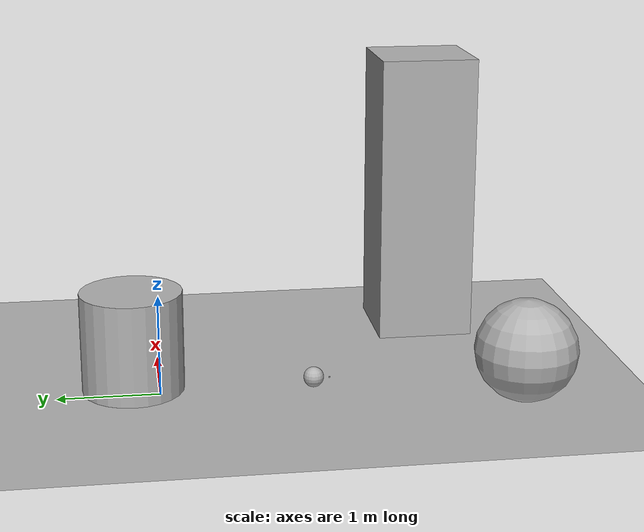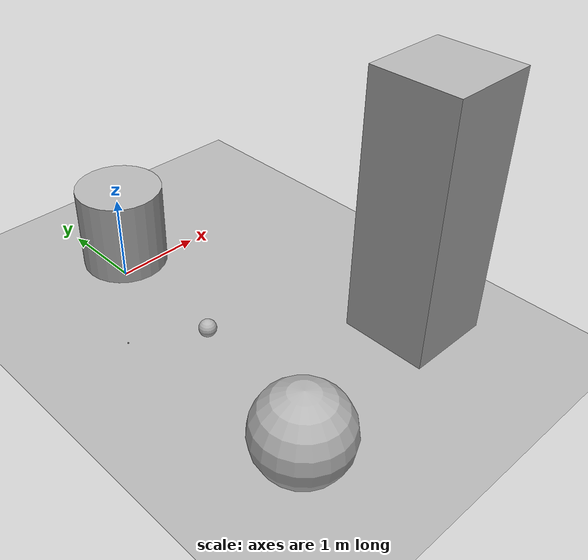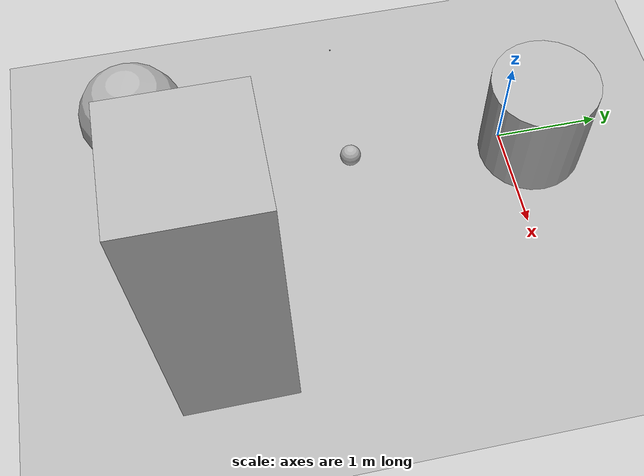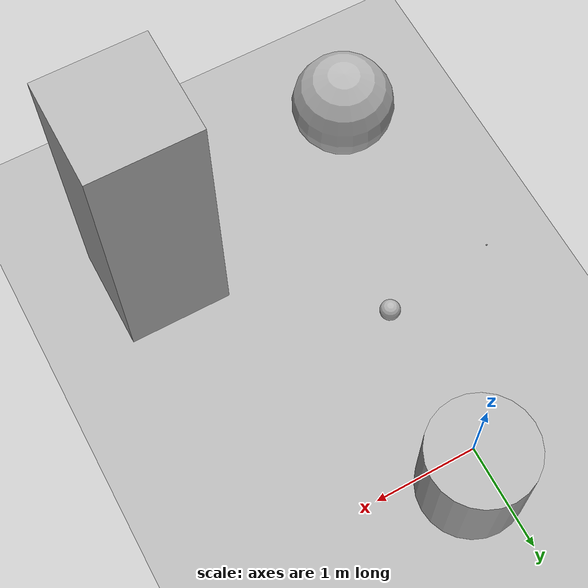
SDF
<sdf version='1.9'>
  <world name='demo'>
    <gravity>0 0 -9.8</gravity>
    <magnetic_field>6e-06 2.3e-05 -4.2e-05</magnetic_field>
    <atmosphere type='adiabatic'/>
    <physics type='ode'>
      <max_step_size>0.001</max_step_size>
      <real_time_factor>1</real_time_factor>
      <real_time_update_rate>1000</real_time_update_rate>
    </physics>
    <scene>
      <ambient>0.4 0.4 0.4 1</ambient>
      <background>0.7 0.7 0.7 1</background>
      <shadows>true</shadows>
    </scene>

    <plugin
      filename="libignition-gazebo-sensors-system.so"
      name="ignition::gazebo::systems::Sensors">
      <render_engine>ogre2</render_engine>
    </plugin>
    <plugin
        filename="ignition-gazebo-physics-system"
        name="ignition::gazebo::systems::Physics">
    </plugin>
    <plugin
        filename="ignition-gazebo-scene-broadcaster-system"
        name="ignition::gazebo::systems::SceneBroadcaster">
    </plugin>

    <model name='ground_plane'>
      <static>true</static>
      <link name='link'>
        <collision name='collision'>
          <geometry>
            <plane>
              <normal>0 0 1</normal>
              <size>100 100</size>
            </plane>
          </geometry>
          <surface>
            <friction>
              <ode>
                <mu>100</mu>
                <mu2>50</mu2>
              </ode>
            </friction>
            <bounce/>
            <contact/>
          </surface>
        </collision>
        <visual name='visual'>
          <cast_shadows>false</cast_shadows>
          <geometry>
            <plane>
              <normal>0 0 1</normal>
              <size>100 100</size>
            </plane>
          </geometry>
          <material>
            <ambient>0.3 0.3 0.3 1</ambient>
            <diffuse>0.7 0.7 0.7 1</diffuse>
            <specular>0.01 0.01 0.01 1</specular>
          </material>
        </visual>
        <pose>0 0 0 0 -0 0</pose>
        <inertial>
          <pose>0 0 0 0 -0 0</pose>
          <mass>1</mass>
          <inertia>
            <ixx>1</ixx>
            <ixy>0</ixy>
            <ixz>0</ixz>
            <iyy>1</iyy>
            <iyz>0</iyz>
            <izz>1</izz>
          </inertia>
        </inertial>
        <enable_wind>false</enable_wind>
      </link>
      <pose>0 0 0 0 -0 0</pose>
      <self_collide>false</self_collide>
    </model>

    <light name='sun' type='directional'>
      <pose>0 0 10 0 -0 0</pose>
      <cast_shadows>true</cast_shadows>
      <intensity>1</intensity>
      <direction>-0.5 0.1 -0.9</direction>
      <diffuse>0.8 0.8 0.8 1</diffuse>
      <specular>0.2 0.2 0.2 1</specular>
      <attenuation>
        <range>1000</range>
        <linear>0.01</linear>
        <constant>0.90000000000000002</constant>
        <quadratic>0.001</quadratic>
      </attenuation>

      <spot>
        <inner_angle>0</inner_angle>
        <outer_angle>0</outer_angle>
        <falloff>0</falloff>
      </spot>
    </light>

    <model name='box'>
      <pose>1.73354 -2.89373 1.5 0 0 -0</pose>
      <link name='box_link'>
        <inertial>
          <inertia>
            <ixx>0.16666</ixx>
            <ixy>0</ixy>
            <ixz>0</ixz>
            <iyy>0.16666</iyy>
            <iyz>0</iyz>
            <izz>0.16666</izz>
          </inertia>
          <mass>1</mass>
          <pose>0 0 0 0 -0 0</pose>
        </inertial>
        <collision name='box_collision'>
          <geometry>
            <box>
              <size>1 1 3</size>
            </box>
          </geometry>
          <surface>
            <friction>
              <ode/>
            </friction>
            <bounce/>
            <contact/>
          </surface>
        </collision>
        <visual name='box_visual'>
          <geometry>
            <box>
              <size>1 1 3</size>
            </box>
          </geometry>
          <material>
            <ambient>0.3 0.3 0.3 1</ambient>
            <diffuse>0.7 0.7 0.7 1</diffuse>
            <specular>1 1 1 1</specular>
          </material>
        </visual>
        <pose>0 0 0 0 -0 0</pose>
        <enable_wind>false</enable_wind>
      </link>
      <static>false</static>
      <self_collide>false</self_collide>
    </model>

    <model name='cylinder'>
      <pose>0.194962 0.256265 0.499999 0 -0 -0</pose>
      <link name='cylinder_link'>
        <inertial>
          <inertia>
            <ixx>0.14580000000000001</ixx>
            <ixy>0</ixy>
            <ixz>0</ixz>
            <iyy>0.14580000000000001</iyy>
            <iyz>0</iyz>
            <izz>0.125</izz>
          </inertia>
          <mass>1</mass>
          <pose>0 0 0 0 -0 0</pose>
        </inertial>
        <collision name='cylinder_collision'>
          <geometry>
            <cylinder>
              <radius>0.5</radius>
              <length>1</length>
            </cylinder>
          </geometry>
          <surface>
            <friction>
              <ode/>
            </friction>
            <bounce/>
            <contact/>
          </surface>
        </collision>
        <visual name='cylinder_visual'>
          <geometry>
            <cylinder>
              <radius>0.5</radius>
              <length>1</length>
            </cylinder>
          </geometry>
          <material>
            <ambient>0.3 0.3 0.3 1</ambient>
            <diffuse>0.7 0.7 0.7 1</diffuse>
            <specular>1 1 1 1</specular>
          </material>
        </visual>
        <pose>0 0 0 0 -0 0</pose>
        <enable_wind>false</enable_wind>
      </link>
      <static>false</static>
      <self_collide>false</self_collide>
    </model>

    <model name='sphere'>
      <pose>-0.585944 -3.46902 0.5 0 -0 0</pose>
      <link name='sphere_link'>
        <inertial>
          <inertia>
            <ixx>0.10000000000000001</ixx>
            <ixy>0</ixy>
            <ixz>0</ixz>
            <iyy>0.10000000000000001</iyy>
            <iyz>0</iyz>
            <izz>0.10000000000000001</izz>
          </inertia>
          <mass>1</mass>
          <pose>0 0 0 0 -0 0</pose>
        </inertial>
        <collision name='sphere_collision'>
          <geometry>
            <sphere>
              <radius>0.5</radius>
            </sphere>
          </geometry>
          <surface>
            <friction>
              <ode/>
            </friction>
            <bounce/>
            <contact/>
          </surface>
        </collision>
        <visual name='sphere_visual'>
          <geometry>
            <sphere>
              <radius>0.5</radius>
            </sphere>
          </geometry>
          <material>
            <ambient>0.3 0.3 0.3 1</ambient>
            <diffuse>0.7 0.7 0.7 1</diffuse>
            <specular>1 1 1 1</specular>
          </material>
        </visual>
        <pose>0 0 0 0 -0 0</pose>
        <enable_wind>false</enable_wind>
      </link>
      <static>false</static>
      <self_collide>false</self_collide>
    </model>

    <model name='sphere2'>
      <pose>-0.0 -1.5 0.1 0 -0 0</pose>
      <link name='sphere2_link'>
        <inertial>
          <inertia>
            <ixx>0.10000000000000001</ixx>
            <ixy>0</ixy>
            <ixz>0</ixz>
            <iyy>0.10000000000000001</iyy>
            <iyz>0</iyz>
            <izz>0.10000000000000001</izz>
          </inertia>
          <mass>1</mass>
          <pose>0 0 0 0 -0 0</pose>
        </inertial>
        <collision name='sphere2_collision'>
          <geometry>
            <sphere>
              <radius>0.5</radius>
            </sphere>
          </geometry>
          <surface>
            <friction>
              <ode/>
            </friction>
            <bounce/>
            <contact/>
          </surface>
        </collision>
        <visual name='sphere2_visual'>
          <geometry>
            <sphere>
              <radius>0.1</radius>
            </sphere>
          </geometry>
          <material>
            <ambient>0.3 0.3 0.3 1</ambient>
            <diffuse>0.7 0.7 0.7 1</diffuse>
            <specular>1 1 1 1</specular>
          </material>
        </visual>
        <pose>0 0 0 0 -0 0</pose>
        <enable_wind>false</enable_wind>
      </link>
      <static>false</static>
      <self_collide>false</self_collide>
    </model>

    <frame name="sensor_frame" attached_to='invisible_robot'>
        <pose>0.0 0 0.0 0 0 0</pose>
    </frame>

    <model name='invisible_robot'>
      <pose>-1.0 -1.5 0.5 0 -0 0</pose>
      <link name='invisible_robot_link'>
        <inertial>
          <inertia>
            <ixx>0.10000000000000001</ixx>
            <ixy>0</ixy>
            <ixz>0</ixz>
            <iyy>0.10000000000000001</iyy>
            <iyz>0</iyz>
            <izz>0.10000000000000001</izz>
          </inertia>
          <mass>1</mass>
          <pose>0 0 0 0 -0 0</pose>
        </inertial>
        <collision name='sphere_collision'>
          <geometry>
            <box>
              <size>0.01 0.01 0.01</size>
            </box>
          </geometry>
          <surface>
            <friction>
              <ode/>
            </friction>
            <bounce/>
            <contact/>
          </surface>
        </collision>
        <visual name='sphere_visual'>
          <geometry>
            <box>
              <size>0.01 0.01 0.01</size>
            </box>
          </geometry>
          <material>
            <ambient>0.3 0.3 0.3 1</ambient>
            <diffuse>0.7 0.7 0.7 1</diffuse>
            <specular>1 1 1 1</specular>
          </material>
        </visual>
        <pose>0 0 0 0 0 0</pose>
        <enable_wind>false</enable_wind>

        <!-- 3D Lidar -->
        <sensor name='gpu_lidar' type='gpu_lidar'>"
          <pose relative_to='sensor_frame'>0 0 0.0 0 0 0</pose>
          <topic>lidar_3d</topic>
          <update_rate>10</update_rate>
          <ray>
            <scan>
              <horizontal>
                <samples>320</samples>
                <resolution>1</resolution>
                <min_angle>-1.396263</min_angle>
                <max_angle>1.396263</max_angle>
              </horizontal>
              <vertical>
                <samples>16</samples>
                <resolution>1.0</resolution>
                <min_angle>-0.523599</min_angle>
                <max_angle>0.523599</max_angle>
              </vertical>
            </scan>
            <range>
              <min>1.5</min>
              <max>10.0</max>
              <resolution>0.01</resolution>
            </range>
          </ray>
          <always_on>1</always_on>
          <visualize>true</visualize>
        </sensor>

        <!-- Planar Lidar -->
        <sensor name='gpu_planar_lidar' type='gpu_lidar'>"
          <pose relative_to='sensor_frame'>0 0 0.0 0 0 0</pose>
          <topic>lidar_planar</topic>
          <update_rate>10</update_rate>
          <ray>
            <scan>
              <horizontal>
                <samples>640</samples>  <!-- TOOD -->
                <resolution>1</resolution>
                <min_angle>-1.396263</min_angle>
                <max_angle>1.396263</max_angle>
              </horizontal>
              <vertical>
                <samples>1</samples>
                <resolution>0.01</resolution>
                <min_angle>0</min_angle>
                <max_angle>0</max_angle>
              </vertical>
            </scan>
            <range>
              <min>0.2</min>
              <max>10.0</max>
              <resolution>0.01</resolution>
            </range>
          </ray>
          <always_on>1</always_on>
          <visualize>true</visualize>
        </sensor>

        <!-- Depth Camera -->
        <sensor name="rgbd_camera" type="rgbd_camera">
          <pose>0 0 0.0 0.0 0.0 0.0</pose>
          <camera>
            <horizontal_fov>1.047</horizontal_fov>
            <image>
              <width>320</width>
              <height>240</height>
            </image>
            <clip>
              <near>0.1</near>
              <far>5.0</far>
            </clip>
          </camera>
          <always_on>1</always_on>
          <update_rate>5</update_rate>
          <visualize>true</visualize>
          <topic>depth_camera</topic>
          <enable_metrics>true</enable_metrics>
        </sensor>

      </link>
      <static>true</static>
      <self_collide>false</self_collide>
    </model>

  </world>
</sdf>
